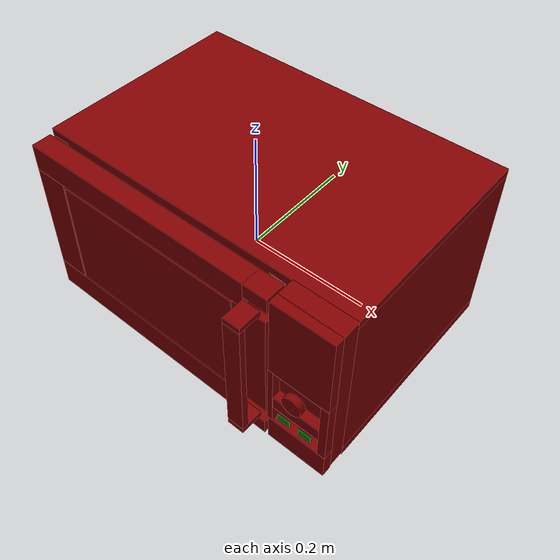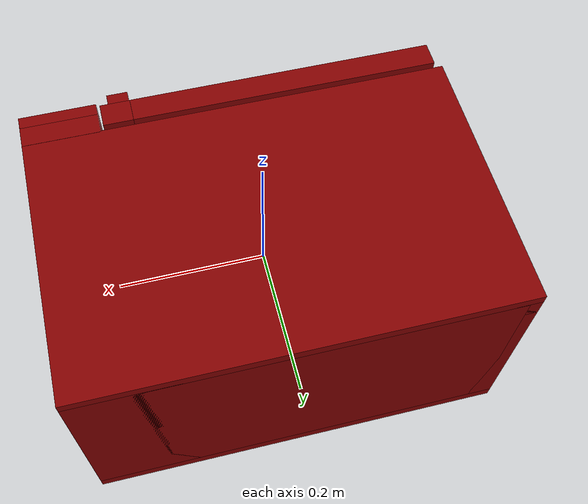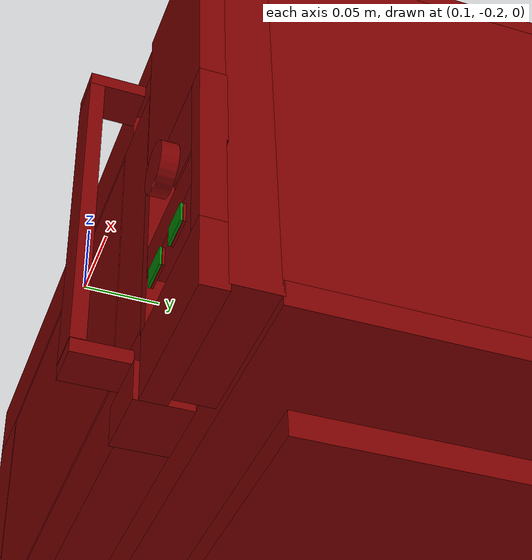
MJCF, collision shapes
<mujoco model="model">
  <compiler angle="radian"/>
  <asset>
    <mesh file="visuals/door.obj" name="door_vis"/>
    <mesh file="visuals/door_Clear.obj" name="door_Clear_vis"/>
    <mesh file="visuals/Body001.obj" name="Body001_vis"/>
    <mesh file="visuals/Button001.obj" name="Button001_vis"/>
    <mesh file="visuals/Button002.obj" name="Button002_vis"/>
    <mesh file="visuals/Disc001.obj" name="Disc001_vis"/>
    <mesh file="visuals/Knob001.obj" name="Knob001_vis"/>
    <texture file="visuals/T_BC001.png" name="Body001_material" type="2d"/>
    <material name="Body001_material" rgba="1 1 1 1.0" texture="Body001_material" shininess="2" specular="2"/>
    <texture file="visuals/T_BC001.png" name="door_material" type="2d"/>
    <material name="door_material" rgba="1 1 1 1.0" texture="door_material" shininess="2" specular="2"/>
    <texture file="visuals/T_BC001.png" name="door_Clear_material" type="2d"/>
    <material name="door_Clear_material" rgba="1 1 1 0.8557591438293457" texture="door_Clear_material" shininess="1" specular="1"/>
    <texture file="visuals/T_BC001.png" name="Button001_material" type="2d"/>
    <material name="Button001_material" rgba="1 1 1 1.0" texture="Button001_material" shininess="0.4472135901451111" specular="0.3103448502657381"/>
    <texture file="visuals/T_BC001.png" name="Button002_material" type="2d"/>
    <material name="Button002_material" rgba="1 1 1 1.0" texture="Button002_material" shininess="0.4472135901451111" specular="0.3103448502657381"/>
    <texture file="visuals/T_BC001.png" name="Disc001_material" type="2d"/>
    <material name="Disc001_material" rgba="1 1 1 1.0" texture="Disc001_material" shininess="1" specular="1"/>
    <texture file="visuals/T_BC001.png" name="Knob001_material" type="2d"/>
    <material name="Knob001_material" rgba="1 1 1 1.0" texture="Knob001_material" shininess="0.4472135901451111" specular="0.3103448502657381"/>
  </asset>
  <default>
    <default class="visual">
      <geom conaffinity="0" contype="0" group="1" type="mesh"/>
    </default>
    <default class="collision">
      <geom group="0" rgba="0.5 0 0 0.5"/>
    </default>
    <default class="spawn">
      <geom group="0" rgba="1 1 1 0.5" contype="0" conaffinity="0"/>
      <site group="0" rgba="1 1 1 0.5"/>
    </default>
    <default class="region">
      <geom group="1" conaffinity="0" contype="0" rgba="0 1 0 0"/>
    </default>
  </default>
  <worldbody>
    <body>
      <body name="object">
        <geom class="collision" type="box" pos="-0.05938774719834328 0.016429780051112175 -0.09502654522657394" size="0.10291451960802078 0.10291451960802078 0.0022197843063622713" quat="1.0 0.0 0.0 0.0" name="tray" rgba="0 1 0 0.5"/>
        <geom class="collision" type="box" pos="0.24567539989948273 -0.18528784811496735 -0.07138217985630035" size="0.010529562830924988 0.0007581612444482744 0.006517639849334955" quat="1.0 0.0 0.0 0.0" name="stop_button" rgba="0.0 0.5 0 0.5"/>
        <geom class="collision" type="box" pos="0.2090815156698227 -0.18528784811496735 -0.07138217985630035" size="0.010529578663408756 0.0007581632817164063 0.006517652887851" quat="1.0 0.0 0.0 0.0" name="start_button" rgba="0.0 0.5 0 0.5"/>
        <geom mesh="Body001_vis" type="mesh" solimp="0.998 0.998 0.001" solref="0.001 1" density="100" friction="0.95 0.3 0.1" class="visual" material="Body001_material"/>
        <geom class="collision" type="box" pos="-2.3052096366882324e-05 0.039480894804000854 -0.1284608095884323" size="0.28024062514305115 0.17873340845108032 0.014597782865166664" quat="1.0 0.0 0.0 0.0"/>
        <geom class="collision" type="box" pos="-0.008200384676456451 0.029451943933963776 -0.1503056138753891" size="0.207381010055542 0.13438034057617188 0.010015944018959999" quat="1.0 0.0 0.0 0.0"/>
        <geom class="collision" type="box" pos="0.2115650475025177 0.03948093205690384 0.010735150426626205" size="0.06865295767784119 0.1787334382534027 0.13717962801456451" quat="1.0 0.0 0.0 0.0"/>
        <geom class="collision" type="box" pos="-2.3052096366882324e-05 0.03948093205690384 0.1412004828453064" size="0.28024062514305115 0.1787334382534027 0.019719595089554787" quat="1.0 0.0 0.0 0.0"/>
        <geom class="collision" type="box" pos="-0.2640726864337921 0.03948093205690384 0.010735150426626205" size="0.016190968453884125 0.1787334382534027 0.13717962801456451" quat="1.0 0.0 0.0 0.0"/>
        <geom class="collision" type="box" pos="-0.0001710653305053711 0.20273303985595703 0.010341539978981018" size="0.2641007900238037 0.015481341630220413 0.13668522238731384" quat="1.0 0.0 0.0 0.0"/>
        <geom class="collision" type="box" pos="0.2299848347902298 -0.1528521031141281 0.011875919066369534" size="0.050232741981744766 0.015066191554069519 0.149148091673851" quat="1.0 0.0 0.0 0.0"/>
        <geom class="collision" type="box" pos="0.2299848347902298 -0.17526082694530487 0.09021499007940292" size="0.050232745707035065 0.008356140926480293 0.0708090215921402" quat="1.0 0.0 0.0 0.0"/>
        <geom class="collision" type="box" pos="0.2299848347902298 -0.17526082694530487 -0.11876236647367477" size="0.050232741981744766 0.008356140926480293 0.02330286055803299" quat="1.0 0.0 0.0 0.0"/>
        <geom class="collision" type="box" pos="0.2735767960548401 -0.17526082694530487 -0.037645623087882996" size="0.00664076441898942 0.008356140926480293 0.05796971544623375" quat="1.0 0.0 0.0 0.0"/>
        <geom class="collision" type="box" pos="0.18247374892234802 -0.17526082694530487 -0.0376456193625927" size="0.004678760655224323 0.008356140926480293 0.05796970799565315" quat="1.0 0.0 0.0 0.0"/>
        <geom class="collision" type="box" pos="0.2277427464723587 -0.17526082694530487 -0.049250662326812744" size="0.040190719068050385 0.008356140926480293 0.011540122330188751" quat="1.0 0.0 0.0 0.0"/>
        <body name="door">
          <joint axis="0.0 0.0 1.0" pos="-0.26329922676086426 -0.16534414887428284 0.010757192969322205" limited="true" name="microjoint" range="-1.5707963267948966 0.0" type="hinge" damping="1" frictionloss="1" armature=".01" stiffness="0.05"/>
          <geom mesh="door_vis" type="mesh" solimp="0.998 0.998 0.001" solref="0.001 1" density="100" friction="0.95 0.3 0.1" class="visual" material="door_material"/>
          <geom class="collision" type="box" pos="-0.06862357258796692 -0.1657126396894455 0.13580423593521118" size="0.20452848076820374 0.0165959931910038 0.022893140092492104" quat="1.0 0.0 0.0 0.0"/>
          <geom class="collision" type="box" pos="-0.07248614728450775 -0.1657126247882843 -0.11270149052143097" size="0.2006658911705017 0.016595976427197456 0.024815762415528297" quat="1.0 0.0 0.0 0.0"/>
          <geom class="collision" type="box" pos="-0.24498218297958374 -0.1657126247882843 0.012848451733589172" size="0.02813088521361351 0.016595976427197456 0.10035819560289383" quat="1.0 0.0 0.0 0.0"/>
          <geom class="collision" type="box" pos="0.14541085064411163 -0.1657126098871231 0.012848451733589172" size="0.028212498873472214 0.016595961526036263 0.10035819560289383" quat="1.0 0.0 0.0 0.0"/>
          <geom class="collision" type="box" pos="0.1517094522714615 -0.16740120947360992 -0.1251775026321411" size="0.023682627826929092 0.01828456111252308 0.013537155464291573" quat="1.0 0.0 0.0 0.0"/>
          <geom class="collision" type="box" pos="0.15553125739097595 -0.1657126098871231 0.14593495428562164" size="0.019860822707414627 0.016595961526036263 0.012627840973436832" quat="1.0 0.0 0.0 0.0"/>
          <geom class="collision" type="box" pos="0.15099483728408813 -0.2019350528717041 0.1266351342201233" size="0.014203044585883617 0.01893213577568531 0.004992937669157982" quat="1.0 0.0 0.0 0.0"/>
          <geom class="collision" type="box" pos="0.15099483728408813 -0.2019350528717041 -0.10199031233787537" size="0.014203044585883617 0.01893213577568531 0.004992937669157982" quat="1.0 0.0 0.0 0.0"/>
          <geom class="collision" type="box" pos="0.15099483728408813 -0.2161160260438919 0.012491273693740368" size="0.014203045517206192 0.004992939531803131 0.10917972773313522" quat="1.0 0.0 0.0 0.0" name="door_handle"/>
          <body name="door_Clear">
            <geom mesh="door_Clear_vis" type="mesh" solimp="0.998 0.998 0.001" solref="0.001 1" density="100" friction="0.95 0.3 0.1" class="visual" material="door_Clear_material"/>
            <geom class="collision" type="box" pos="-0.04953077435493469 -0.1657126247882843 0.012109030969440937" size="0.16435062885284424 0.016595978289842606 0.0968436598777771" quat="1.0 0.0 0.0 0.0"/>
          </body>
        </body>
        <body name="Button001">
          <joint axis="0.0 1.0 0.0" pos="0.2091110348701477 -0.18389424681663513 -0.07123757153749466" limited="true" name="Button001_joint" range="0.0 0.0025" type="slide" damping="1" frictionloss="1" armature=".01" stiffness="0.05"/>
          <geom mesh="Button001_vis" type="mesh" solimp="0.998 0.998 0.001" solref="0.001 1" density="100" friction="0.95 0.3 0.1" class="visual" material="Button001_material"/>
          <geom class="collision" type="box" pos="0.2090815156698227 -0.18352563679218292 -0.07138217985630035" size="0.010529573075473309 0.0007581625832244754 0.006517648696899414" quat="1.0 0.0 0.0 0.0"/>
        </body>
        <body name="Button002">
          <joint axis="0.0 1.0 0.0" pos="0.24564091861248016 -0.18389424681663513 -0.07123757898807526" limited="true" name="Button002_joint" range="0.0 0.0025" type="slide" damping="1" frictionloss="1" armature=".01" stiffness="0.05"/>
          <geom mesh="Button002_vis" type="mesh" solimp="0.998 0.998 0.001" solref="0.001 1" density="100" friction="0.95 0.3 0.1" class="visual" material="Button002_material"/>
          <geom class="collision" type="box" pos="0.24567539989948273 -0.18352563679218292 -0.07138217985630035" size="0.010529567487537861 0.0007581619429402053 0.006517644505947828" quat="1.0 0.0 0.0 0.0"/>
        </body>
        <body name="Disc001">
          <joint axis="0.0 0.0 1.0" pos="-0.05964674800634384 0.016020210459828377 -0.10005097091197968" limited="false" name="Disc001_joint" range="0 360" type="hinge" damping="1" frictionloss="1" armature=".01" stiffness="0.05"/>
          <geom mesh="Disc001_vis" type="mesh" solimp="0.998 0.998 0.001" solref="0.001 1" density="100" friction="0.95 0.3 0.1" class="visual" material="Disc001_material"/>
          <geom class="collision" type="cylinder" pos="-0.05938774719834328 0.016429780051112175 -0.10699434578418732" size="0.10291451960802078 0.0022197843063622713" quat="1.0 0.0 0.0 0.0"/>
        </body>
        <body name="Knob001">
          <joint axis="0.0 1.0 0.0" pos="0.22610574960708618 -0.18846583366394043 -0.010493787005543709" limited="true" name="Knob001_joint" range="0.0 5.235987755982989" type="hinge" damping="0.05" armature="0.001"/>
          <geom mesh="Knob001_vis" type="mesh" solimp="0.998 0.998 0.001" solref="0.001 1" density="100" friction="0.95 0.3 0.1" class="visual" material="Knob001_material"/>
          <geom class="collision" type="cylinder" pos="0.2261015623807907 -0.1877712458372116 -0.010438723489642143" size="0.01641750894486904 0.005470505449920893" quat="0.7071068286895752 0.7071067690849304 0.0 0.0"/>
        </body>
        <geom class="region" name="reg_main" type="box" pos="-2.3029744625091553e-05 0.01770583540201187 1.564621925354004e-07" size="0.28024062514305115 0.2005084753036499 0.16102385520935059"/>
        <geom class="region" name="reg_int" type="box" pos="-0.05287456512451172 0.02081458270549774 0.010233838111162186" size="0.1911577731370926 0.1580009013414383 0.11673283204436302"/>
      </body>
    </body>
  </worldbody>
  <actuator>
    <motor name="microjoint_actuator" joint="microjoint" gear="10"/>
    <motor name="Button001_joint_actuator" joint="Button001_joint" gear="0.4"/>
    <motor name="Button002_joint_actuator" joint="Button002_joint" gear="0.4"/>
    <motor name="Disc001_joint_actuator" joint="Disc001_joint" gear="20"/>
    <motor name="Knob001_joint_actuator" joint="Knob001_joint" gear="10"/>
  </actuator>
</mujoco>
